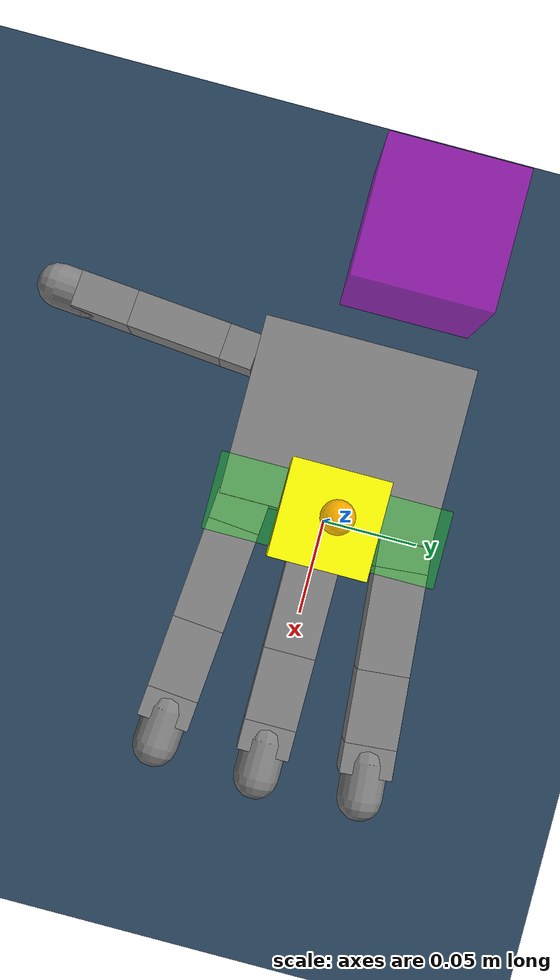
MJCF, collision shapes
<mujoco model="right_allegro_hand scene">
  <include file="allegro_right_hand.xml"/>

  <statistic center="0 0 0" extent="0.3"/>

  <visual>
    <rgba haze="0.15 0.25 0.35 1"/>
    <quality shadowsize="8192"/>
    <global azimuth="130" elevation="-40" offwidth="1280" offheight="960"/>
  </visual>

  <asset>
    <texture name='cube_surface' file="../assets/textures/iris_block.png" gridsize="3 4" gridlayout=".U..LFRB.D.."/>
    <material name="obj_material" texture="cube_surface" specular="5" shininess=".0"/>

    <texture type="2d" name="groundplane" builtin="checker" mark="edge" rgb1="0.2 0.3 0.4" rgb2="0.1 0.2 0.3"
      markrgb="0.8 0.8 0.8" width="300" height="300"/>
    <material name="groundplane" texture="groundplane" texuniform="true" texrepeat="5 5" reflectance="0."/>
  </asset>

  <worldbody>
    <light directional="true" ambient="0.2 0.2 0.2" diffuse="0.8 0.8 0.8"  castshadow="false" pos="0 1 4" dir="0 0 -1" name="light0"/>
    <camera name="demo-cam" pos="-0.003 -0.393 0.317" xyaxes="1.000 -0.000 0.000 0.000 0.462 0.887"/>

    <geom name="floor" pos="0 0 -0.1" size="0 0 0.05" type="plane" material="groundplane"/>

    <!-- Cube object (not the target, just in the scene) -->
    <body name="obj" pos="0.0 0.0 0.025">
        <freejoint name="cube_table"/>
        <geom name="obj" type="box" mass="0.1" material="obj_material" size="0.025 0.025 0.025"
              quat="1 0 0 0" friction="0.5" rgba="1.0 1.0 0 0.99"
              />
    </body>

    <!-- Target cube visualization (optional, kept for consistency) -->
    <body name="goal" pos="-0.1 -0.00 0.2">
        <geom name="goal_geom" size="0.025 0.025 0.025" material="obj_material" type="box" conaffinity="0" contype="0"
        pos="0 0 0"  rgba="1 0 1 0.5"/>
    </body>

    <!-- Target palm pose visualization -->
    <!-- IMPORTANT: Base rotation quat="0 1 0 1" matches the actual palm body rotation -->
    <body name="target_palm" pos="0.0 0.0 0.0" quat="0 1 0 1">
        <!-- Semi-transparent box representing target palm -->
        <geom name="target_palm_box" type="box" size="0.03 0.06 0.02"
              conaffinity="0" contype="0" rgba="0 1 0 0.3"/>
        <!-- Coordinate frame axes for target palm orientation -->
        <geom name="target_palm_x" type="cylinder" size="0.001" fromto="0 0 0 0.03 0 0"
              conaffinity="0" contype="0" rgba="1 0 0 0.7"/>
        <geom name="target_palm_y" type="cylinder" size="0.001" fromto="0 0 0 0 0.03 0"
              conaffinity="0" contype="0" rgba="0 1 0 0.7"/>
        <geom name="target_palm_z" type="cylinder" size="0.001" fromto="0 0 0 0 0 0.03"
              conaffinity="0" contype="0" rgba="0 0 1 0.7"/>
    </body>

    <!-- Target fingertip positions (4 spheres) -->
    <body name="target_fftip" pos="0.0 0.0 0.1">
        <geom name="target_fftip_geom" type="sphere" size="0.008"
              conaffinity="0" contype="0" rgba="1 0.5 0 0.6"/>
    </body>
    <body name="target_mftip" pos="0.0 0.0 0.1">
        <geom name="target_mftip_geom" type="sphere" size="0.008"
              conaffinity="0" contype="0" rgba="1 0.5 0 0.6"/>
    </body>
    <body name="target_rftip" pos="0.0 0.0 0.1">
        <geom name="target_rftip_geom" type="sphere" size="0.008"
              conaffinity="0" contype="0" rgba="1 0.5 0 0.6"/>
    </body>
    <body name="target_thtip" pos="0.0 0.0 0.1">
        <geom name="target_thtip_geom" type="sphere" size="0.008"
              conaffinity="0" contype="0" rgba="1 0.5 0 0.6"/>
    </body>
  </worldbody>
</mujoco>

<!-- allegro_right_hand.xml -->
<mujoco model="allegro_right">
  <compiler angle="radian" autolimits="true"/>

  <option cone="elliptic" impratio="10"/>

  <default>
    <default class="allegro_right">
      <joint axis="0 1 0" damping=".1"/>
      <position kp="1"/>
      <geom density="800"/>

      <default class="visual">
        <geom type="mesh" contype="0" conaffinity="0" group="2" material="black"/>
        <default class="palm_visual">
          <geom mesh="base_link"/>
        </default>
        <default class="base_visual">
          <geom mesh="link_0.0"/>
        </default>
        <default class="proximal_visual">
          <geom mesh="link_1.0"/>
        </default>
        <default class="medial_visual">
          <geom mesh="link_2.0"/>
        </default>
        <default class="distal_visual">
          <geom mesh="link_3.0"/>
        </default>
        <default class="fingertip_visual">
          <geom pos="0 0 0.0267" material="white" mesh="link_3.0_tip"/>
        </default>
        <default class="thumbtip_visual">
          <geom pos="0 0 0.0423" material="white" mesh="link_15.0_tip"/>
        </default>
      </default>

      <default class="collision">
        <geom group="3" type="box" mass="0"/>
        <default class="palm_collision">
          <geom size="0.0204 0.0565 0.0475" pos="-0.0093 0 -0.0475"/>
        </default>
        <default class="base_collision">
          <geom size="0.0098 0.01375 0.0082" pos="0 0 0.0082"/>
          <default class="thumb_base_collision">
            <geom size="0.0179 0.017 0.02275" pos="-0.0179 0.009 0.0145"/>
          </default>
        </default>
        <default class="proximal_collision">
          <geom size="0.0098 0.01375 0.027" pos="0 0 0.027"/>
          <default class="thumb_proximal_collision">
            <geom size="0.0098 0.01375 0.00885" pos="0 0 0.00885"/>
          </default>
        </default>
        <default class="medial_collision">
          <geom size="0.0098 0.01375 0.0192" pos="0 0 0.0192"/>
          <default class="thumb_medial_collision">
            <geom size="0.0098 0.01375 0.0257" pos="0 0 0.0257"/>
          </default>
        </default>
        <default class="distal_collision">
          <geom size="0.0098 0.01375 0.008" pos="0 0 0.008"/>
          <default class="thumb_distal_collision">
            <geom size="0.0098 0.01375 0.0157" pos="0 0 0.0157"/>
          </default>
        </default>
        <default class="fingertip_collision">
          <geom type="capsule" size="0.012 0.01" pos="0 0 0.019"/>
          <default class="thumbtip_collision">
            <geom type="capsule" size="0.012 0.008" pos="0 0 0.035"/>
          </default>
        </default>
      </default>

      <default class="base">
        <joint axis="0 0 1" range="-0.47 0.47"/>
        <position ctrlrange="-0.47 0.47"/>
      </default>
      <default class="proximal">
        <joint range="-0.196 1.61"/>
        <position ctrlrange="-0.196 1.61"/>
      </default>
      <default class="medial">
        <joint range="-0.174 1.709"/>
        <position ctrlrange="-0.174 1.709"/>
      </default>
      <default class="distal">
        <joint range="-0.227 1.618"/>
        <position ctrlrange="-0.227 1.618"/>
      </default>
      <default class="thumb_base">
        <joint axis="-1 0 0" range="0.263 1.396"/>
        <position ctrlrange="0.263 1.396"/>
      </default>
      <default class="thumb_proximal">
        <joint axis="0 0 1" range="-0.105 2.163"/>
        <position ctrlrange="-0.105 2.163"/>
      </default>
      <default class="thumb_medial">
        <joint range="-0.189 1.644"/>
        <position ctrlrange="-0.189 1.644"/>
      </default>
      <default class="thumb_distal">
        <joint range="-0.162 1.719"/>
        <position ctrlrange="-0.162 1.719"/>
      </default>
    </default>
  </default>

  <asset>
    <material name="black" rgba="0.2 0.2 0.2 1"/>
    <material name="white" rgba="0.9 0.9 0.9 1"/>

    <mesh file="../assets/allegro/assets/base_link.stl"/>
    <mesh file="../assets/allegro/assets/link_0.0.stl"/>
    <mesh file="../assets/allegro/assets/link_1.0.stl"/>
    <mesh file="../assets/allegro/assets/link_2.0.stl"/>
    <mesh file="../assets/allegro/assets/link_3.0.stl"/>
    <mesh file="../assets/allegro/assets/link_3.0_tip.stl"/>
    <mesh file="../assets/allegro/assets/link_12.0_right.stl"/>
    <mesh file="../assets/allegro/assets/link_13.0.stl"/>
    <mesh file="../assets/allegro/assets/link_14.0.stl"/>
    <mesh file="../assets/allegro/assets/link_15.0.stl"/>
    <mesh file="../assets/allegro/assets/link_15.0_tip.stl"/>
  </asset>

  <worldbody>
    <body name="palm" quat="0 1 0 1" childclass="allegro_right">
      <!-- Palm translation joints -->
      <joint name="palm_tx" type="slide" axis="1 0 0" damping="10" range="-0.3 0.3"/>
      <joint name="palm_ty" type="slide" axis="0 1 0" damping="10" range="-0.3 0.3"/>
      <joint name="palm_tz" type="slide" axis="0 0 1" damping="10" range="-0.1 0.5"/>
      <!-- Palm rotation joints (3 separate hinge joints for roll, pitch, yaw) -->
      <joint name="palm_rx" type="hinge" axis="1 0 0" damping="10"/>
      <joint name="palm_ry" type="hinge" axis="0 1 0" damping="10"/>
      <joint name="palm_rz" type="hinge" axis="0 0 1" damping="10"/>
      <geom class="palm_visual" mesh="base_link"/>
      <geom class="palm_collision" name="palm" friction="0.5"/>

      <!-- First finger -->
      <body name="ff_base" pos="0 0.0435 -0.001542" quat="0.999048 -0.0436194 0 0">
        <joint name="ffj0" class="base"/>
        <geom class="base_visual"/>
        <geom class="base_collision" name="ff_base"/>
        <body name="ff_proximal" pos="0 0 0.0164">
          <joint name="ffj1" class="proximal"/>
          <geom class="proximal_visual"/>
          <geom class="proximal_collision" name="ff_proximal"/>
          <body name="ff_medial" pos="0 0 0.054">
            <joint name="ffj2" class="medial"/>
            <geom class="medial_visual"/>
            <geom class="medial_collision" name="ff_medial"/>
            <body name="ff_distal" pos="0 0 0.0384">
              <joint name="ffj3" class="distal"/>
              <geom class="distal_visual"/>
              <geom class="distal_collision" name="ff_distal"/>
              <body name="ff_tip">
                <geom class="fingertip_visual"/>
                <geom class="fingertip_collision" name="fingertip0"/>
                <site rgba="0.5 0.0 0.0 1" size="0.001" pos="0 0 0.0384" name="ftp_0"/>
              </body>
            </body>
          </body>
        </body>
      </body>
      <!-- Middle finger -->
      <body name="mf_base" pos="0 0 0.0007">
        <joint name="mfj0" class="base"/>
        <geom class="base_visual"/>
        <geom class="base_collision" name="mf_base"/>
        <body name="mf_proximal" pos="0 0 0.0164">
          <joint name="mfj1" class="proximal"/>
          <geom class="proximal_visual"/>
          <geom class="proximal_collision" name="mf_proximal"/>
          <body name="mf_medial" pos="0 0 0.054">
            <joint name="mfj2" class="medial"/>
            <geom class="medial_visual"/>
            <geom class="medial_collision" name="mf_medial"/>
            <body name="mf_distal" pos="0 0 0.0384">
              <joint name="mfj3" class="distal"/>
              <geom class="distal_visual"/>
              <geom class="distal_collision" name="mf_distal"/>
              <body name="mf_tip">
                <geom class="fingertip_visual"/>
                <geom class="fingertip_collision" name="fingertip1"/>
                <site rgba="0.5 0.0 0.0 1" size="0.001" pos="0 0 0.0384" name="ftp_1"/>
              </body>
            </body>
          </body>
        </body>
      </body>
      <!-- Ring finger -->
      <body name="rf_base" pos="0 -0.0435 -0.001542" quat="0.999048 0.0436194 0 0">
        <joint name="rfj0" class="base"/>
        <geom class="base_visual"/>
        <geom class="base_collision" name="rf_base"/>
        <body name="rf_proximal" pos="0 0 0.0164">
          <joint name="rfj1" class="proximal"/>
          <geom class="proximal_visual"/>
          <geom class="proximal_collision" name="rf_proximal"/>
          <body name="rf_medial" pos="0 0 0.054">
            <joint name="rfj2" class="medial"/>
            <geom class="medial_visual"/>
            <geom class="medial_collision" name="rf_medial"/>
            <body name="rf_distal" pos="0 0 0.0384">
              <joint name="rfj3" class="distal"/>
              <geom class="distal_visual"/>
              <geom class="distal_collision" name="rf_distal"/>
              <body name="rf_tip">
                <geom class="fingertip_visual"/>
                <geom class="fingertip_collision" name="fingertip2"/>
                <site rgba="0.5 0.0 0.0 1" size="0.001" pos="0 0 0.0384" name="ftp_2"/>
              </body>
            </body>
          </body>
        </body>
      </body>
      <!-- Thumb -->
      <body name="th_base" pos="-0.0182 0.019333 -0.045987" quat="0.477714 -0.521334 -0.521334 -0.477714">
        <joint name="thj0" class="thumb_base"/>
        <geom class="visual" mesh="link_12.0_right"/>
        <geom class="thumb_base_collision" name="th_base"/>
        <body name="th_proximal" pos="-0.027 0.005 0.0399">
          <joint name="thj1" class="thumb_proximal"/>
          <geom class="visual" mesh="link_13.0"/>
          <geom class="thumb_proximal_collision" name="th_proximal"/>
          <body name="th_medial" pos="0 0 0.0177">
            <joint name="thj2" class="thumb_medial"/>
            <geom class="visual" mesh="link_14.0"/>
            <geom class="thumb_medial_collision" name="th_medial"/>
            <body name="th_distal" pos="0 0 0.0514">
              <joint name="thj3" class="thumb_distal"/>
              <geom class="visual" mesh="link_15.0"/>
              <geom class="thumb_distal_collision" name="th_distal"/>
              <body name="th_tip">
                <geom class="thumbtip_visual"/>
                <geom class="thumbtip_collision" name="fingertip3"/>
                <site rgba="0.5 0.0 0.0 1" size="0.001" pos="0 0 0.054" name="ftp_3"/>
              </body>
            </body>
          </body>
        </body>
      </body>
    </body>
  </worldbody>

  <contact>
    <exclude body1="palm" body2="ff_base"/>
    <exclude body1="palm" body2="mf_base"/>
    <exclude body1="palm" body2="rf_base"/>
    <exclude body1="palm" body2="th_base"/>
    <exclude body1="palm" body2="th_proximal"/>
  </contact>

  <actuator>
    <!-- Palm position actuators with high stiffness -->
    <position name="palm_x" joint="palm_tx" ctrlrange="-0.3 0.3" kp="10000"/>
    <position name="palm_y" joint="palm_ty" ctrlrange="-0.3 0.3" kp="10000"/>
    <position name="palm_z" joint="palm_tz" ctrlrange="-0.1 0.5" kp="10000"/>
    <!-- Palm rotation actuators (3 separate position controls for roll, pitch, yaw) -->
    <position name="palm_rotx" joint="palm_rx" kp="100"/>
    <position name="palm_roty" joint="palm_ry" kp="100"/>
    <position name="palm_rotz" joint="palm_rz" kp="100"/>

    <position name="ffa0" joint="ffj0" class="base" kp="1"/>
    <position name="ffa1" joint="ffj1" class="proximal" kp="1"/>
    <position name="ffa2" joint="ffj2" class="medial" kp="1"/>
    <position name="ffa3" joint="ffj3" class="distal" kp="1"/>
    <position name="mfa0" joint="mfj0" class="base" kp="1"/>
    <position name="mfa1" joint="mfj1" class="proximal" kp="1"/>
    <position name="mfa2" joint="mfj2" class="medial" kp="1"/>
    <position name="mfa3" joint="mfj3" class="distal" kp="1"/>
    <position name="rfa0" joint="rfj0" class="base" kp="1"/>
    <position name="rfa1" joint="rfj1" class="proximal" kp="1"/>
    <position name="rfa2" joint="rfj2" class="medial" kp="1"/>
    <position name="rfa3" joint="rfj3" class="distal" kp="1"/>
    <position name="tha0" joint="thj0" class="thumb_base" kp="1"/>
    <position name="tha1" joint="thj1" class="thumb_proximal" kp="1"/>
    <position name="tha2" joint="thj2" class="thumb_medial" kp="1"/>
    <position name="tha3" joint="thj3" class="thumb_distal" kp="1"/>
  </actuator>

</mujoco>
